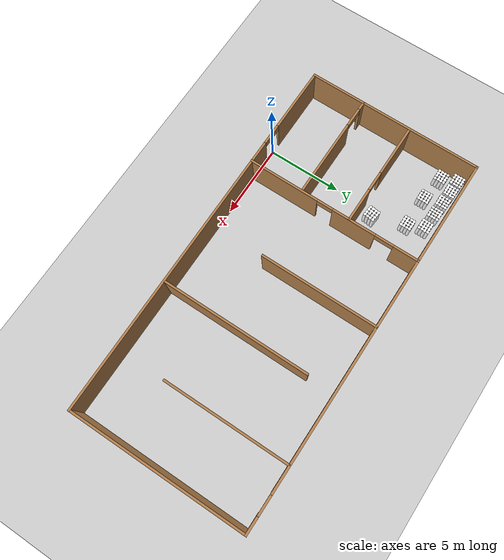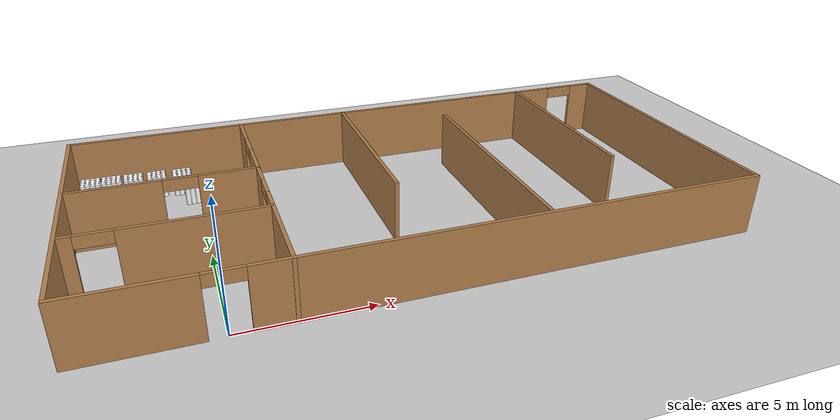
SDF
<sdf version="1.6">
 <world name="default">
  <light name="sun" type="directional">
   <pose>0 0 10 0 -0 0</pose>
   <diffuse>0.8 0.8 0.8 1</diffuse>
   <specular>0.2 0.2 0.2 1</specular>
   <attenuation>
    <range>1000</range>
    <constant>0.9</constant>
    <linear>0.01</linear>
    <quadratic>0.001</quadratic>
   </attenuation>
   <direction>-0.5 0.1 -0.9</direction>
  </light>
  <model name="ground_plane">
   <static>1</static>
   <link name="link">
    <collision name="collision">
     <geometry><plane><normal>0 0 1</normal><size>100 100</size></plane></geometry>
     <surface><friction><ode><mu>100</mu><mu2>50</mu2></ode></friction></surface>
    </collision>
    <visual name="visual">
     <cast_shadows>0</cast_shadows>
     <geometry><plane><normal>0 0 1</normal><size>100 100</size></plane></geometry>
     <material>
      <script><uri>file://media/materials/scripts/gazebo.material</uri><name>Gazebo/Grey</name></script>
     </material>
    </visual>
   </link>
  </model>
  <gravity>0 0 -9.8</gravity>
  <magnetic_field>6e-06 2.3e-05 -4.2e-05</magnetic_field>
  <atmosphere type="adiabatic"/>
  <physics name="default_physics" default="0" type="ode">
   <max_step_size>0.001</max_step_size>
   <real_time_factor>1</real_time_factor>
   <real_time_update_rate>1000</real_time_update_rate>
  </physics>
  <scene><ambient>0.4 0.4 0.4 1</ambient><background>0.7 0.7 0.7 1</background><shadows>1</shadows></scene>
  <spherical_coordinates>
   <surface_model>EARTH_WGS84</surface_model>
   <latitude_deg>0</latitude_deg>
   <longitude_deg>0</longitude_deg>
   <elevation>0</elevation>
   <heading_deg>0</heading_deg>
  </spherical_coordinates>
  <model name="final_env">
   <pose>7.69908 5.88916 0 0 -0 0</pose>
   <link name="Wall_0">
    <collision name="Wall_0_Collision">
     <geometry><box><size>12 0.15 2.5</size></box></geometry>
     <pose>0 0 1.25 0 -0 0</pose>
    </collision>
    <visual name="Wall_0_Visual">
     <pose>0 0 1.25 0 -0 0</pose>
     <geometry><box><size>12 0.15 2.5</size></box></geometry>
     <material>
      <script><uri>file://media/materials/scripts/gazebo.material</uri><name>Gazebo/Wood</name></script>
      <ambient>1 1 1 1</ambient>
     </material>
     <meta><layer>0</layer></meta>
    </visual>
    <pose>-12.675 0.005724 0 0 -0 -1.5708</pose>
   </link>
   <link name="Wall_1">
    <pose>0 -5.91928 0 0 -0 0</pose>
    <visual name="Wall_1_Visual_0">
     <pose>-10.5432 0 1.25 0 -0 0</pose>
     <geometry><box><size>4.41369 0.15 2.5</size></box></geometry>
     <material>
      <script><uri>file://media/materials/scripts/gazebo.material</uri><name>Gazebo/Wood</name></script>
      <ambient>1 1 1 1</ambient>
     </material>
     <meta><layer>0</layer></meta>
    </visual>
    <collision name="Wall_1_Collision_0">
     <geometry><box><size>4.41369 0.15 2.5</size></box></geometry>
     <pose>-10.5432 0 1.25 0 -0 0</pose>
    </collision>
    <visual name="Wall_1_Visual_1">
     <pose>2.91296 0 1.25 0 -0 0</pose>
     <geometry><box><size>19.6741 0.15 2.5</size></box></geometry>
     <material>
      <script><uri>file://media/materials/scripts/gazebo.material</uri><name>Gazebo/Wood</name></script>
      <ambient>1 1 1 1</ambient>
     </material>
     <meta><layer>0</layer></meta>
    </visual>
    <collision name="Wall_1_Collision_1">
     <geometry><box><size>19.6741 0.15 2.5</size></box></geometry>
     <pose>2.91296 0 1.25 0 -0 0</pose>
    </collision>
    <visual name="Wall_1_Visual_2">
     <pose>-7.63019 0 2.25 0 -0 0</pose>
     <geometry><box><size>1.41223 0.15 0.5</size></box></geometry>
     <material>
      <script><uri>file://media/materials/scripts/gazebo.material</uri><name>Gazebo/Wood</name></script>
      <ambient>1 1 1 1</ambient>
     </material>
     <meta><layer>0</layer></meta>
    </visual>
    <collision name="Wall_1_Collision_2">
     <geometry><box><size>1.41223 0.15 0.5</size></box></geometry>
     <pose>-7.63019 0 2.25 0 -0 0</pose>
    </collision>
   </link>
   <link name="Wall_11">
    <collision name="Wall_11_Collision">
     <geometry><box><size>8 0.15 2.5</size></box></geometry>
     <pose>0 0 1.25 0 -0 0</pose>
    </collision>
    <visual name="Wall_11_Visual">
     <pose>0 0 1.25 0 -0 0</pose>
     <geometry><box><size>8 0.15 2.5</size></box></geometry>
     <material>
      <script><uri>file://media/materials/scripts/gazebo.material</uri><name>Gazebo/Wood</name></script>
      <ambient>1 1 1 1</ambient>
     </material>
     <meta><layer>0</layer></meta>
    </visual>
    <pose>-0.701629 1.986 0 0 -0 -1.5708</pose>
   </link>
   <link name="Wall_13">
    <collision name="Wall_13_Collision">
     <geometry><box><size>10 0.15 2.5</size></box></geometry>
     <pose>0 0 1.25 0 -0 0</pose>
    </collision>
    <visual name="Wall_13_Visual">
     <pose>0 0 1.25 0 -0 0</pose>
     <geometry><box><size>10 0.15 2.5</size></box></geometry>
     <material>
      <script><uri>file://media/materials/scripts/gazebo.material</uri><name>Gazebo/Wood</name></script>
      <ambient>1 1 1 1</ambient>
     </material>
     <meta><layer>0</layer></meta>
    </visual>
    <pose>3.75633 -0.88094 0 0 -0 1.5708</pose>
   </link>
   <link name="Wall_15">
    <collision name="Wall_15_Collision">
     <geometry><box><size>8.5 0.15 2.5</size></box></geometry>
     <pose>0 0 1.25 0 -0 0</pose>
    </collision>
    <visual name="Wall_15_Visual">
     <pose>0 0 1.25 0 -0 0</pose>
     <geometry><box><size>8.5 0.15 2.5</size></box></geometry>
     <material>
      <script><uri>file://media/materials/scripts/gazebo.material</uri><name>Gazebo/Wood</name></script>
      <ambient>1 1 1 1</ambient>
     </material>
     <meta><layer>0</layer></meta>
    </visual>
    <pose>8.451 1.69655 0 0 -0 -1.5708</pose>
   </link>
   <link name="Wall_2">
    <collision name="Wall_2_Collision">
     <geometry><box><size>12 0.15 2.5</size></box></geometry>
     <pose>0 0 1.25 0 -0 0</pose>
    </collision>
    <visual name="Wall_2_Visual">
     <pose>0 0 1.25 0 -0 0</pose>
     <geometry><box><size>12 0.15 2.5</size></box></geometry>
     <material>
      <script><uri>file://media/materials/scripts/gazebo.material</uri><name>Gazebo/Wood</name></script>
      <ambient>1 1 1 1</ambient>
     </material>
     <meta><layer>0</layer></meta>
    </visual>
    <pose>12.675 0.005724 0 0 -0 1.5708</pose>
   </link>
   <link name="Wall_3">
    <pose>0 5.93072 0 0 -0 3.14159</pose>
    <visual name="Wall_3_Visual_0">
     <pose>-12.1526 0 1.25 0 -0 0</pose>
     <geometry><box><size>1.1948 0.15 2.5</size></box></geometry>
     <material>
      <script><uri>file://media/materials/scripts/gazebo.material</uri><name>Gazebo/Wood</name></script>
      <ambient>1 1 1 1</ambient>
     </material>
     <meta><layer>0</layer></meta>
    </visual>
    <collision name="Wall_3_Collision_0">
     <geometry><box><size>1.1948 0.15 2.5</size></box></geometry>
     <pose>-12.1526 0 1.25 0 -0 0</pose>
    </collision>
    <visual name="Wall_3_Visual_1">
     <pose>1.2466 0 1.25 0 -0 0</pose>
     <geometry><box><size>23.0068 0.15 2.5</size></box></geometry>
     <material>
      <script><uri>file://media/materials/scripts/gazebo.material</uri><name>Gazebo/Wood</name></script>
      <ambient>1 1 1 1</ambient>
     </material>
     <meta><layer>0</layer></meta>
    </visual>
    <collision name="Wall_3_Collision_1">
     <geometry><box><size>23.0068 0.15 2.5</size></box></geometry>
     <pose>1.2466 0 1.25 0 -0 0</pose>
    </collision>
    <visual name="Wall_3_Visual_2">
     <pose>-10.906 0 2.25 0 -0 0</pose>
     <geometry><box><size>1.2984 0.15 0.5</size></box></geometry>
     <material>
      <script><uri>file://media/materials/scripts/gazebo.material</uri><name>Gazebo/Wood</name></script>
      <ambient>1 1 1 1</ambient>
     </material>
     <meta><layer>0</layer></meta>
    </visual>
    <collision name="Wall_3_Collision_2">
     <geometry><box><size>1.2984 0.15 0.5</size></box></geometry>
     <pose>-10.906 0 2.25 0 -0 0</pose>
    </collision>
   </link>
   <link name="Wall_5">
    <pose>-9.06582 -2.25535 0 0 -0 0</pose>
    <visual name="Wall_5_Visual_0">
     <pose>-3.3436 0 1.25 0 -0 0</pose>
     <geometry><box><size>0.562793 0.15 2.5</size></box></geometry>
     <material>
      <script><uri>file://media/materials/scripts/gazebo.material</uri><name>Gazebo/Wood</name></script>
      <ambient>1 1 1 1</ambient>
     </material>
     <meta><layer>0</layer></meta>
    </visual>
    <collision name="Wall_5_Collision_0">
     <geometry><box><size>0.562793 0.15 2.5</size></box></geometry>
     <pose>-3.3436 0 1.25 0 -0 0</pose>
    </collision>
    <visual name="Wall_5_Visual_1">
     <pose>0.945843 0 1.25 0 -0 0</pose>
     <geometry><box><size>5.35831 0.15 2.5</size></box></geometry>
     <material>
      <script><uri>file://media/materials/scripts/gazebo.material</uri><name>Gazebo/Wood</name></script>
      <ambient>1 1 1 1</ambient>
     </material>
     <meta><layer>0</layer></meta>
    </visual>
    <collision name="Wall_5_Collision_1">
     <geometry><box><size>5.35831 0.15 2.5</size></box></geometry>
     <pose>0.945843 0 1.25 0 -0 0</pose>
    </collision>
    <visual name="Wall_5_Visual_2">
     <pose>-2.39776 0 2.25 0 -0 0</pose>
     <geometry><box><size>1.32889 0.15 0.5</size></box></geometry>
     <material>
      <script><uri>file://media/materials/scripts/gazebo.material</uri><name>Gazebo/Wood</name></script>
      <ambient>1 1 1 1</ambient>
     </material>
     <meta><layer>0</layer></meta>
    </visual>
    <collision name="Wall_5_Collision_2">
     <geometry><box><size>1.32889 0.15 0.5</size></box></geometry>
     <pose>-2.39776 0 2.25 0 -0 0</pose>
    </collision>
   </link>
   <link name="Wall_7">
    <pose>-5.45547 -0.005724 0 0 -0 1.5708</pose>
    <visual name="Wall_7_Visual_0">
     <pose>-3.56376 0 1.25 0 -0 0</pose>
     <geometry><box><size>4.87248 0.15 2.5</size></box></geometry>
     <material>
      <script><uri>file://media/materials/scripts/gazebo.material</uri><name>Gazebo/Wood</name></script>
      <ambient>1 1 1 1</ambient>
     </material>
     <meta><layer>0</layer></meta>
    </visual>
    <collision name="Wall_7_Collision_0">
     <geometry><box><size>4.87248 0.15 2.5</size></box></geometry>
     <pose>-3.56376 0 1.25 0 -0 0</pose>
    </collision>
    <visual name="Wall_7_Visual_1">
     <pose>1.47102 0 1.25 0 -0 0</pose>
     <geometry><box><size>2.99867 0.15 2.5</size></box></geometry>
     <material>
      <script><uri>file://media/materials/scripts/gazebo.material</uri><name>Gazebo/Wood</name></script>
      <ambient>1 1 1 1</ambient>
     </material>
     <meta><layer>0</layer></meta>
    </visual>
    <collision name="Wall_7_Collision_1">
     <geometry><box><size>2.99867 0.15 2.5</size></box></geometry>
     <pose>1.47102 0 1.25 0 -0 0</pose>
    </collision>
    <visual name="Wall_7_Visual_2">
     <pose>5.12015 0 1.25 0 -0 0</pose>
     <geometry><box><size>1.7597 0.15 2.5</size></box></geometry>
     <material>
      <script><uri>file://media/materials/scripts/gazebo.material</uri><name>Gazebo/Wood</name></script>
      <ambient>1 1 1 1</ambient>
     </material>
     <meta><layer>0</layer></meta>
    </visual>
    <collision name="Wall_7_Collision_2">
     <geometry><box><size>1.7597 0.15 2.5</size></box></geometry>
     <pose>5.12015 0 1.25 0 -0 0</pose>
    </collision>
    <visual name="Wall_7_Visual_3">
     <pose>-0.57792 0 2.25 0 -0 0</pose>
     <geometry><box><size>1.0992 0.15 0.5</size></box></geometry>
     <material>
      <script><uri>file://media/materials/scripts/gazebo.material</uri><name>Gazebo/Wood</name></script>
      <ambient>1 1 1 1</ambient>
     </material>
     <meta><layer>0</layer></meta>
    </visual>
    <collision name="Wall_7_Collision_3">
     <geometry><box><size>1.0992 0.15 0.5</size></box></geometry>
     <pose>-0.57792 0 2.25 0 -0 0</pose>
    </collision>
    <visual name="Wall_7_Visual_4">
     <pose>3.60533 0 2.25 0 -0 0</pose>
     <geometry><box><size>1.26995 0.15 0.5</size></box></geometry>
     <material>
      <script><uri>file://media/materials/scripts/gazebo.material</uri><name>Gazebo/Wood</name></script>
      <ambient>1 1 1 1</ambient>
     </material>
     <meta><layer>0</layer></meta>
    </visual>
    <collision name="Wall_7_Collision_4">
     <geometry><box><size>1.26995 0.15 0.5</size></box></geometry>
     <pose>3.60533 0 2.25 0 -0 0</pose>
    </collision>
   </link>
   <link name="Wall_9">
    <pose>-9.02637 1.13743 0 0 -0 0</pose>
    <visual name="Wall_9_Visual_0">
     <pose>-1.85355 0 1.25 0 -0 0</pose>
     <geometry><box><size>3.5429 0.15 2.5</size></box></geometry>
     <material>
      <script><uri>file://media/materials/scripts/gazebo.material</uri><name>Gazebo/Wood</name></script>
      <ambient>1 1 1 1</ambient>
     </material>
     <meta><layer>0</layer></meta>
    </visual>
    <collision name="Wall_9_Collision_0">
     <geometry><box><size>3.5429 0.15 2.5</size></box></geometry>
     <pose>-1.85355 0 1.25 0 -0 0</pose>
    </collision>
    <visual name="Wall_9_Visual_1">
     <pose>2.43891 0 1.25 0 -0 0</pose>
     <geometry><box><size>2.37218 0.15 2.5</size></box></geometry>
     <material>
      <script><uri>file://media/materials/scripts/gazebo.material</uri><name>Gazebo/Wood</name></script>
      <ambient>1 1 1 1</ambient>
     </material>
     <meta><layer>0</layer></meta>
    </visual>
    <collision name="Wall_9_Collision_1">
     <geometry><box><size>2.37218 0.15 2.5</size></box></geometry>
     <pose>2.43891 0 1.25 0 -0 0</pose>
    </collision>
    <visual name="Wall_9_Visual_2">
     <pose>0.585361 0 2.25 0 -0 0</pose>
     <geometry><box><size>1.33492 0.15 0.5</size></box></geometry>
     <material>
      <script><uri>file://media/materials/scripts/gazebo.material</uri><name>Gazebo/Wood</name></script>
      <ambient>1 1 1 1</ambient>
     </material>
     <meta><layer>0</layer></meta>
    </visual>
    <collision name="Wall_9_Collision_2">
     <geometry><box><size>1.33492 0.15 0.5</size></box></geometry>
     <pose>0.585361 0 2.25 0 -0 0</pose>
    </collision>
   </link>
   <static>1</static>
  </model>
  <model name="beanstack">
   <link name="link">
    <inertial>
     <mass>0</mass>
     <inertia>
      <ixx>0.166667</ixx>
      <ixy>0</ixy>
      <ixz>0</ixz>
      <iyy>0.166667</iyy>
      <iyz>0</iyz>
      <izz>0.166667</izz>
     </inertia>
    </inertial>
    <visual name="visual">
     <geometry><mesh><uri>model://beanstack/meshes/beanstack.dae</uri><scale>0.1 0.1 0.1</scale></mesh></geometry>
     <material>
      <lighting>1</lighting>
      <script>
       <uri>model://beanstack/materials/scripts</uri>
       <uri>model://beanstack/materials/textures</uri>
       <name>beanstack</name>
      </script>
      <shader type="vertex"><normal_map>__default__</normal_map></shader>
      <ambient>1 1 1 1</ambient>
      <diffuse>1 1 1 1</diffuse>
      <specular>0 0 0 1</specular>
      <emissive>0 0 0 1</emissive>
     </material>
    </visual>
   </link>
   <static>0</static>
   <pose>-4.70215 10.9531 0 0 -0 0</pose>
  </model>
  <model name="beanstack_0">
   <link name="link">
    <inertial>
     <mass>0</mass>
     <inertia>
      <ixx>0.166667</ixx>
      <ixy>0</ixy>
      <ixz>0</ixz>
      <iyy>0.166667</iyy>
      <iyz>0</iyz>
      <izz>0.166667</izz>
     </inertia>
    </inertial>
    <visual name="visual">
     <geometry><mesh><uri>model://beanstack/meshes/beanstack.dae</uri><scale>0.1 0.1 0.1</scale></mesh></geometry>
     <material>
      <lighting>1</lighting>
      <script>
       <uri>model://beanstack/materials/scripts</uri>
       <uri>model://beanstack/materials/textures</uri>
       <name>beanstack</name>
      </script>
      <shader type="vertex"><normal_map>__default__</normal_map></shader>
      <ambient>1 1 1 1</ambient>
      <diffuse>1 1 1 1</diffuse>
      <specular>0 0 0 1</specular>
      <emissive>0 0 0 1</emissive>
     </material>
    </visual>
   </link>
   <static>0</static>
   <pose>-3.85329 10.9373 0 0 -0 0</pose>
  </model>
  <model name="beanstack_1">
   <link name="link">
    <inertial>
     <mass>0</mass>
     <inertia>
      <ixx>0.166667</ixx>
      <ixy>0</ixy>
      <ixz>0</ixz>
      <iyy>0.166667</iyy>
      <iyz>0</iyz>
      <izz>0.166667</izz>
     </inertia>
    </inertial>
    <visual name="visual">
     <geometry><mesh><uri>model://beanstack/meshes/beanstack.dae</uri><scale>0.1 0.1 0.1</scale></mesh></geometry>
     <material>
      <lighting>1</lighting>
      <script>
       <uri>model://beanstack/materials/scripts</uri>
       <uri>model://beanstack/materials/textures</uri>
       <name>beanstack</name>
      </script>
      <shader type="vertex"><normal_map>__default__</normal_map></shader>
      <ambient>1 1 1 1</ambient>
      <diffuse>1 1 1 1</diffuse>
      <specular>0 0 0 1</specular>
      <emissive>0 0 0 1</emissive>
     </material>
    </visual>
   </link>
   <static>0</static>
   <pose>-2.95393 10.8934 0 0 -0 0</pose>
  </model>
  <model name="beanstack_2">
   <link name="link">
    <inertial>
     <mass>0</mass>
     <inertia>
      <ixx>0.166667</ixx>
      <ixy>0</ixy>
      <ixz>0</ixz>
      <iyy>0.166667</iyy>
      <iyz>0</iyz>
      <izz>0.166667</izz>
     </inertia>
    </inertial>
    <visual name="visual">
     <geometry><mesh><uri>model://beanstack/meshes/beanstack.dae</uri><scale>0.1 0.1 0.1</scale></mesh></geometry>
     <material>
      <lighting>1</lighting>
      <script>
       <uri>model://beanstack/materials/scripts</uri>
       <uri>model://beanstack/materials/textures</uri>
       <name>beanstack</name>
      </script>
      <shader type="vertex"><normal_map>__default__</normal_map></shader>
      <ambient>1 1 1 1</ambient>
      <diffuse>1 1 1 1</diffuse>
      <specular>0 0 0 1</specular>
      <emissive>0 0 0 1</emissive>
     </material>
    </visual>
   </link>
   <static>0</static>
   <pose>-1.98258 10.8487 0 0 -0 0</pose>
  </model>
  <model name="beanstack_3">
   <link name="link">
    <inertial>
     <mass>0</mass>
     <inertia>
      <ixx>0.166667</ixx>
      <ixy>0</ixy>
      <ixz>0</ixz>
      <iyy>0.166667</iyy>
      <iyz>0</iyz>
      <izz>0.166667</izz>
     </inertia>
    </inertial>
    <visual name="visual">
     <geometry><mesh><uri>model://beanstack/meshes/beanstack.dae</uri><scale>0.1 0.1 0.1</scale></mesh></geometry>
     <material>
      <lighting>1</lighting>
      <script>
       <uri>model://beanstack/materials/scripts</uri>
       <uri>model://beanstack/materials/textures</uri>
       <name>beanstack</name>
      </script>
      <shader type="vertex"><normal_map>__default__</normal_map></shader>
      <ambient>1 1 1 1</ambient>
      <diffuse>1 1 1 1</diffuse>
      <specular>0 0 0 1</specular>
      <emissive>0 0 0 1</emissive>
     </material>
    </visual>
   </link>
   <static>0</static>
   <pose>-0.916993 10.771 0 0 -0 0</pose>
  </model>
  <model name="beanstack_4">
   <link name="link">
    <inertial>
     <mass>0</mass>
     <inertia>
      <ixx>0.166667</ixx>
      <ixy>0</ixy>
      <ixz>0</ixz>
      <iyy>0.166667</iyy>
      <iyz>0</iyz>
      <izz>0.166667</izz>
     </inertia>
    </inertial>
    <visual name="visual">
     <geometry><mesh><uri>model://beanstack/meshes/beanstack.dae</uri><scale>0.1 0.1 0.1</scale></mesh></geometry>
     <material>
      <lighting>1</lighting>
      <script>
       <uri>model://beanstack/materials/scripts</uri>
       <uri>model://beanstack/materials/textures</uri>
       <name>beanstack</name>
      </script>
      <shader type="vertex"><normal_map>__default__</normal_map></shader>
      <ambient>1 1 1 1</ambient>
      <diffuse>1 1 1 1</diffuse>
      <specular>0 0 0 1</specular>
      <emissive>0 0 0 1</emissive>
     </material>
    </visual>
   </link>
   <static>0</static>
   <pose>-4.40894 9.94715 0 0 -0 0</pose>
  </model>
  <model name="beanstack_5">
   <link name="link">
    <inertial>
     <mass>0</mass>
     <inertia>
      <ixx>0.166667</ixx>
      <ixy>0</ixy>
      <ixz>0</ixz>
      <iyy>0.166667</iyy>
      <iyz>0</iyz>
      <izz>0.166667</izz>
     </inertia>
    </inertial>
    <visual name="visual">
     <geometry><mesh><uri>model://beanstack/meshes/beanstack.dae</uri><scale>0.1 0.1 0.1</scale></mesh></geometry>
     <material>
      <lighting>1</lighting>
      <script>
       <uri>model://beanstack/materials/scripts</uri>
       <uri>model://beanstack/materials/textures</uri>
       <name>beanstack</name>
      </script>
      <shader type="vertex"><normal_map>__default__</normal_map></shader>
      <ambient>1 1 1 1</ambient>
      <diffuse>1 1 1 1</diffuse>
      <specular>0 0 0 1</specular>
      <emissive>0 0 0 1</emissive>
     </material>
    </visual>
   </link>
   <static>0</static>
   <pose>-0.487666 9.71958 0 0 -0 0</pose>
  </model>
  <model name="beanstack_6">
   <link name="link">
    <inertial>
     <mass>0</mass>
     <inertia>
      <ixx>0.166667</ixx>
      <ixy>0</ixy>
      <ixz>0</ixz>
      <iyy>0.166667</iyy>
      <iyz>0</iyz>
      <izz>0.166667</izz>
     </inertia>
    </inertial>
    <visual name="visual">
     <geometry><mesh><uri>model://beanstack/meshes/beanstack.dae</uri><scale>0.1 0.1 0.1</scale></mesh></geometry>
     <material>
      <lighting>1</lighting>
      <script>
       <uri>model://beanstack/materials/scripts</uri>
       <uri>model://beanstack/materials/textures</uri>
       <name>beanstack</name>
      </script>
      <shader type="vertex"><normal_map>__default__</normal_map></shader>
      <ambient>1 1 1 1</ambient>
      <diffuse>1 1 1 1</diffuse>
      <specular>0 0 0 1</specular>
      <emissive>0 0 0 1</emissive>
     </material>
    </visual>
   </link>
   <static>0</static>
   <pose>-2.63121 9.73641 0 0 -0 0</pose>
  </model>
  <model name="beanstack_7">
   <link name="link">
    <inertial>
     <mass>0</mass>
     <inertia>
      <ixx>0.166667</ixx>
      <ixy>0</ixy>
      <ixz>0</ixz>
      <iyy>0.166667</iyy>
      <iyz>0</iyz>
      <izz>0.166667</izz>
     </inertia>
    </inertial>
    <visual name="visual">
     <geometry><mesh><uri>model://beanstack/meshes/beanstack.dae</uri><scale>0.1 0.1 0.1</scale></mesh></geometry>
     <material>
      <lighting>1</lighting>
      <script>
       <uri>model://beanstack/materials/scripts</uri>
       <uri>model://beanstack/materials/textures</uri>
       <name>beanstack</name>
      </script>
      <shader type="vertex"><normal_map>__default__</normal_map></shader>
      <ambient>1 1 1 1</ambient>
      <diffuse>1 1 1 1</diffuse>
      <specular>0 0 0 1</specular>
      <emissive>0 0 0 1</emissive>
     </material>
    </visual>
   </link>
   <static>0</static>
   <pose>1.19874 8.16033 0.885345 0 -0 3.04627</pose>
  </model>
 </world>
</sdf>
